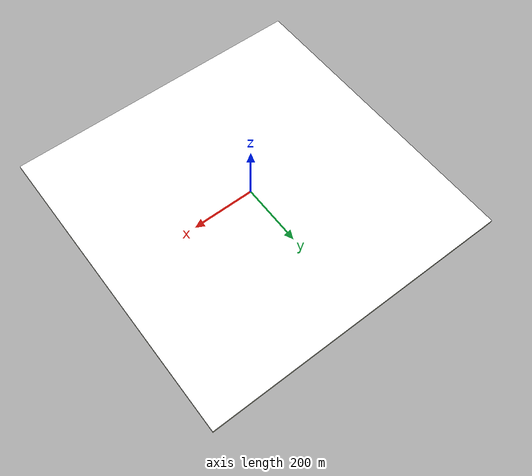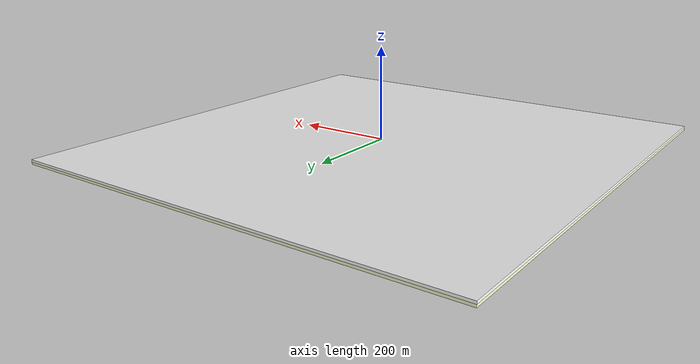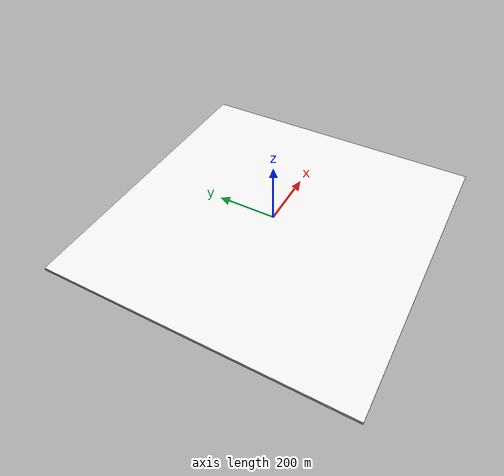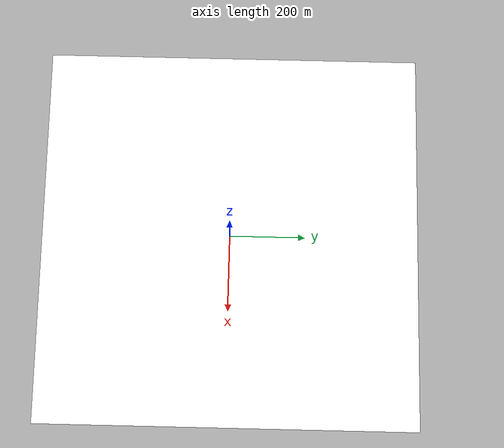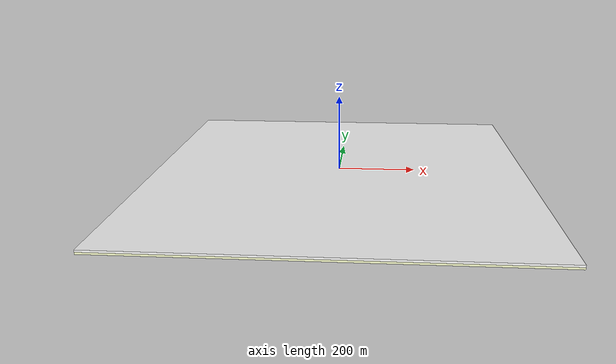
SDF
<?xml version="1.0" ?>
<sdf version="1.9">
  <world name="guardian_guardian_open_field">
    <physics name="1ms" type="ignored">
      <max_step_size>0.001</max_step_size>
      <real_time_factor>1.0</real_time_factor>
    </physics>
    <plugin filename="gz-sim-physics-system" name="gz::sim::systems::Physics"></plugin>
    <plugin filename="gz-sim-user-commands-system" name="gz::sim::systems::UserCommands"></plugin>
    <plugin filename="gz-sim-scene-broadcaster-system" name="gz::sim::systems::SceneBroadcaster"></plugin>

    <scene>
      <ambient>0.45 0.45 0.45 1</ambient>
      <background>0.55 0.58 0.62 1</background>
    </scene>

    <light type="directional" name="sun">
      <cast_shadows>true</cast_shadows>
      <pose>0 0 10 0.3 0.5 0</pose>
      <diffuse>0.95 0.95 0.95 1</diffuse>
      <specular>0.2 0.2 0.2 1</specular>
    </light>

    <!-- Map-base square: floorSide × floorSide × 10 m (top face at z = 0): top #ffffff, bottom #fbffce. -->
    <model name="open_field_floor">
      <static>true</static>
      <pose>0 0 -5 0 0 0</pose>
      <link name="link">
        <collision name="collision">
          <geometry>
            <box>
              <size>1000 1000 10</size>
            </box>
          </geometry>
        </collision>
        <visual name="visual_bottom">
          <pose>0 0 -7.5 0 0 0</pose>
          <geometry>
            <box>
              <size>1000 1000 5</size>
            </box>
          </geometry>
          <material>
            <ambient>0.984 1.000 0.808 1</ambient>
            <diffuse>0.984 1.000 0.808 1</diffuse>
            <specular>0.05 0.05 0.05 1</specular>
          </material>
        </visual>
        <visual name="visual_top">
          <pose>0 0 -2.5 0 0 0</pose>
          <geometry>
            <box>
              <size>1000 1000 5</size>
            </box>
          </geometry>
          <material>
            <ambient>1.000 1.000 1.000 1</ambient>
            <diffuse>1.000 1.000 1.000 1</diffuse>
            <specular>0.05 0.05 0.05 1</specular>
          </material>
        </visual>
      </link>
    </model>
  </world>
</sdf>
